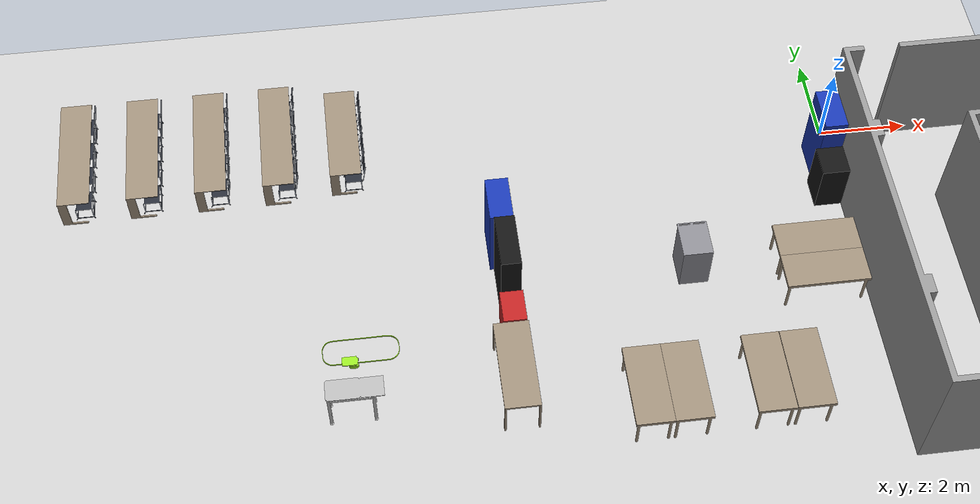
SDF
<sdf version="1.4">
 <world name="default">
  <physics name="5ms" type="ignored">
   <max_step_size>0.005</max_step_size>
   <real_time_factor>1.0</real_time_factor>
  </physics>
  <plugin filename="gz-sim-physics-system" name="gz::sim::systems::Physics"/>
  <plugin filename="gz-sim-user-commands-system" name="gz::sim::systems::UserCommands"/>
  <plugin filename="gz-sim-scene-broadcaster-system" name="gz::sim::systems::SceneBroadcaster"/>
  <plugin filename="gz-sim-sensors-system" name="gz::sim::systems::Sensors">
   <render_engine>ogre2</render_engine>
  </plugin>
  <plugin filename="gz-sim-imu-system" name="gz::sim::systems::Imu"/>
  <gravity>0.0 0.0 -9.8</gravity>
  <scene>
   <ambient>0.4 0.4 0.4 1</ambient>
   <background>0.7 0.7 0.7 1</background>
   <shadows>false</shadows>
   <grid>false</grid>
   <origin_visual>false</origin_visual>
  </scene>
  <include><uri>model://sun</uri></include>
  <include><uri>model://ground_plane</uri></include>
  <model name="mfja_3rd_floor_walls">
   <include><uri>model://mfja_3rd_floor</uri></include>
   <pose>0 0 0 0 0 -1.57</pose>
  </model>
  <include>
   <uri>model://kuka_table</uri>
   <name>kuka_table_1</name>
   <pose>-11.173 -6.0 0.5 -1.57 0 1.57</pose>
  </include>
  <include>
   <uri>model://shuttle_2_left</uri>
   <name>shuttle_2_left_1</name>
   <pose>-10.7 -5.25 1.18 0 0 -1.57</pose>
  </include>
  <include><uri>model://lab_table</uri><name>lab_table_1</name><pose>-17.0 0.87 0.0 0 0 -1.57</pose></include>
  <include><uri>model://lab_table</uri><name>lab_table_2</name><pose>-15.5 0.87 0.0 0 0 -1.57</pose></include>
  <include><uri>model://lab_table</uri><name>lab_table_3</name><pose>-14.0 0.87 0.0 0 0 -1.57</pose></include>
  <include><uri>model://lab_table</uri><name>lab_table_4</name><pose>-12.5 0.87 0.0 0 0 -1.57</pose></include>
  <include>
   <uri>model://lab_table_240cm</uri>
   <name>lab_table_5</name>
   <pose>-11.0 0.57 0.0 0 0 -1.57</pose>
  </include>
  <include><uri>model://lab_chair</uri><name>lab_chair_1</name><pose>-10.8 -0.15 0.0 0 0 0</pose></include>
  <include><uri>model://lab_chair</uri><name>lab_chair_2</name><pose>-10.8 0.4 0.0 0 0 0</pose></include>
  <include><uri>model://lab_chair</uri><name>lab_chair_3</name><pose>-10.8 1.0 0.0 0 0 0</pose></include>
  <include><uri>model://lab_chair</uri><name>lab_chair_4</name><pose>-10.8 1.6 0.0 0 0 0</pose></include>
  <include><uri>model://lab_chair</uri><name>lab_chair_5</name><pose>-12.3 -0.2 0.0 0 0 0</pose></include>
  <include><uri>model://lab_chair</uri><name>lab_chair_6</name><pose>-12.3 0.5 0.0 0 0 0</pose></include>
  <include><uri>model://lab_chair</uri><name>lab_chair_7</name><pose>-12.3 1.2 0.0 0 0 0</pose></include>
  <include><uri>model://lab_chair</uri><name>lab_chair_8</name><pose>-12.3 1.9 0.0 0 0 0</pose></include>
  <include><uri>model://lab_chair</uri><name>lab_chair_9</name><pose>-13.8 -0.2 0.0 0 0 0</pose></include>
  <include><uri>model://lab_chair</uri><name>lab_chair_10</name><pose>-13.8 0.5 0.0 0 0 0</pose></include>
  <include><uri>model://lab_chair</uri><name>lab_chair_11</name><pose>-13.8 1.2 0.0 0 0 0</pose></include>
  <include><uri>model://lab_chair</uri><name>lab_chair_12</name><pose>-13.8 1.9 0.0 0 0 0</pose></include>
  <include><uri>model://lab_chair</uri><name>lab_chair_13</name><pose>-15.3 -0.2 0.0 0 0 0</pose></include>
  <include><uri>model://lab_chair</uri><name>lab_chair_14</name><pose>-15.3 0.5 0.0 0 0 0</pose></include>
  <include><uri>model://lab_chair</uri><name>lab_chair_15</name><pose>-15.3 1.2 0.0 0 0 0</pose></include>
  <include><uri>model://lab_chair</uri><name>lab_chair_16</name><pose>-15.3 1.9 0.0 0 0 0</pose></include>
  <include><uri>model://lab_chair</uri><name>lab_chair_17</name><pose>-16.8 -0.2 0.0 0 0 0</pose></include>
  <include><uri>model://lab_chair</uri><name>lab_chair_18</name><pose>-16.8 0.5 0.0 0 0 0</pose></include>
  <include><uri>model://lab_chair</uri><name>lab_chair_19</name><pose>-16.8 1.2 0.0 0 0 0</pose></include>
  <include><uri>model://lab_chair</uri><name>lab_chair_20</name><pose>-16.8 1.9 0.0 0 0 0</pose></include>
  <include>
   <uri>model://room314_closet1</uri>
   <name>room314_closet1_1</name>
   <pose>-0.250000 -0.807000 0.0 0 0 0</pose>
  </include>
  <include>
   <uri>model://room314_charging_ergotron</uri>
   <name>room314_charging_ergotron_1</name>
   <pose>-3.7 -3.3 0.0 0 0 1.57</pose>
  </include>
  <include>
   <uri>model://room314_table_180cm</uri>
   <name>room314_table_180cm_1</name>
   <pose>-2.0 -6.5 0.0 0 0 -1.57</pose>
  </include>
  <include>
   <uri>model://room314_table_180cm</uri>
   <name>room314_table_180cm_2</name>
   <pose>-2.81 -6.5 0.0 0 0 -1.57</pose>
  </include>
  <include>
   <uri>model://room314_table_180cm</uri>
   <name>room314_table_180cm_3</name>
   <pose>-4.5 -6.5 0.0 0 0 -1.57</pose>
  </include>
  <include>
   <uri>model://room314_table_180cm</uri>
   <name>room314_table_180cm_4</name>
   <pose>-5.3 -6.5 0.0 0 0 -1.57</pose>
  </include>
  <include>
   <uri>model://room314_table_180cm</uri>
   <name>room314_table_180cm_5</name>
   <pose>-1.0 -3.4 0.0 0 0 0.0</pose>
  </include>
  <include>
   <uri>model://room314_table_180cm</uri>
   <name>room314_table_180cm_6</name>
   <pose>-1.0 -4.2 0.0 0 0 0.0</pose>
  </include>
  <include>
   <uri>model://room314_tiagobox</uri>
   <name>room314_tiagobox_1</name>
   <pose>-0.3 -1.66 0.0 0 0 -1.57</pose>
  </include>
  <include>
   <uri>model://room115_closet115</uri>
   <name>room115_closet115_1</name>
   <pose>-7.75 -3.45 0.0 0 0 -1.57</pose>
  </include>
  <include>
   <uri>model://room314_closet1</uri>
   <name>room115_closet1_1</name>
   <pose>-7.8 -2.34 0.0 0 0 0.0</pose>
  </include>
  <include>
   <uri>model://room115_table2000</uri>
   <name>room115_table2000_1</name>
   <pose>-7.85 -5.8 0.0 0 0 -1.57</pose>
  </include>
  <include>
   <uri>model://room115_tool_set</uri>
   <name>room115_tool_set_1</name>
   <pose>-7.75 -4.43 0.0 0 0 -1.57</pose>
  </include>
 </world>
</sdf>

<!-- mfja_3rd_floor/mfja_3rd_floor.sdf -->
<sdf version="1.4">
  <model name="mfja_3rd_floor">
    <static>1</static>
    <link name="link">

      <collision name="colision1">
        <pose>0 0 0 0 0 0</pose>
        <geometry>
          <mesh>
            <uri>model://mfja_3rd_floor/meshes/mfja_3rd_floor_v3.stl</uri>
	    <scale> 1 1 1 </scale>
          </mesh>
        </geometry>
        <surface>
          <bounce />
          <friction>
            <ode />
          </friction>
          <contact>
            <ode />
          </contact>
        </surface>
      </collision>

      <visual name="visual1">
        <pose>0 0 0 0 0 0</pose>
        <geometry>
          <mesh>
            <uri>model://mfja_3rd_floor/meshes/mfja_3rd_floor_v3.stl</uri>
	    <scale> 1 1 1 </scale>
          </mesh>
        </geometry>
        <material>
          <script>
            <uri>file://media/materials/scripts/gazebo.material</uri>
            <name>Gazebo/Grey</name>
          </script>
        </material>
      </visual>

      <velocity_decay>
        <linear>0.000000</linear>
        <angular>0.000000</angular>
      </velocity_decay>
      <self_collide>0</self_collide>
      <kinematic>0</kinematic>
      <gravity>1</gravity>
    </link>
  </model>
</sdf>

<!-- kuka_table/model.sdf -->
<sdf version="1.9">
  <model name="kuka_table">
    <static>true</static>
    <link name="kuka_table_link">
      <visual name="kuka_table_visual">
        <geometry>
          <mesh>
            <uri>model://kuka_table/meshes/kuka_table.stl</uri>
          </mesh>
        </geometry>
      </visual>
      <collision name="kuka_table_collision">
        <geometry>
          <mesh>
            <uri>model://kuka_table/meshes/kuka_table.stl</uri>
          </mesh>
        </geometry>
      </collision>
    </link>
  </model>
</sdf>

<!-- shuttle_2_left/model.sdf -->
<sdf version="1.9">
  <model name="shuttle_2_left">
    <static>true</static>
    <link name="shuttle_2_left_link">
      <visual name="shuttle_2_left_visual">
        <geometry>
          <mesh>
            <uri>model://shuttle_2_left/meshes/shuttle_2_left.stl</uri>
          </mesh>
        </geometry>
        <material>
          <ambient>0.60 0.90 0.15 1</ambient>
          <diffuse>0.60 0.90 0.15 1</diffuse>
          <specular>0.20 0.20 0.20 1</specular>
          <emissive>0 0 0 1</emissive>
        </material>
      </visual>
      <collision name="shuttle_2_left_collision">
        <geometry>
          <mesh>
            <uri>model://shuttle_2_left/meshes/shuttle_2_left.stl</uri>
          </mesh>
        </geometry>
      </collision>
    </link>
  </model>
</sdf>

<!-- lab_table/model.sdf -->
<sdf version="1.9">
  <model name="lab_table">
    <static>true</static>
    <link name="lab_table_link">
      <visual name="lab_table_visual">
        <pose>-1.4 -0.35 0.72 0 0 0</pose>
        <geometry>
          <mesh>
            <uri>model://lab_table/meshes/table.stl</uri>
          </mesh>
        </geometry>
        <material>
          <ambient>0.62 0.56 0.48 1.0</ambient>
          <diffuse>0.62 0.56 0.48 1.0</diffuse>
          <specular>0.12 0.12 0.12 1.0</specular>
          <emissive>0.0 0.0 0.0 0.0</emissive>
        </material>
      </visual>
      <collision name="lab_table_collision">
        <pose>-1.4 -0.35 0.72 0 0 0</pose>
        <geometry>
          <mesh>
            <uri>model://lab_table/meshes/table.stl</uri>
          </mesh>
        </geometry>
      </collision>
    </link>
  </model>
</sdf>

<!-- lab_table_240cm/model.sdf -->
<sdf version="1.9">
  <model name="lab_table_240cm">
    <static>true</static>
    <link name="lab_table_240cm_link">
      <visual name="lab_table_240cm_visual">
        <pose>-1.4 -0.35 0.72 0 0 0</pose>
        <geometry>
          <mesh>
            <uri>model://lab_table_240cm/meshes/table_240cm.stl</uri>
          </mesh>
        </geometry>
        <material>
          <ambient>0.62 0.56 0.48 1.0</ambient>
          <diffuse>0.62 0.56 0.48 1.0</diffuse>
          <specular>0.12 0.12 0.12 1.0</specular>
          <emissive>0.0 0.0 0.0 0.0</emissive>
        </material>
      </visual>
      <collision name="lab_table_240cm_collision">
        <pose>-1.4 -0.35 0.72 0 0 0</pose>
        <geometry>
          <mesh>
            <uri>model://lab_table_240cm/meshes/table_240cm.stl</uri>
          </mesh>
        </geometry>
      </collision>
    </link>
  </model>
</sdf>

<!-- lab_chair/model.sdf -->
<sdf version="1.9">
  <model name="lab_chair">
    <static>true</static>
    <link name="lab_chair_link">
      <visual name="lab_chair_visual">
        <pose>-0.26923 0.23 -0.00002 1.5708 0 0</pose>
        <geometry>
          <mesh>
            <uri>model://lab_chair/meshes/CHAIR.STL</uri>
            <scale>0.002 0.002 0.002</scale>
          </mesh>
        </geometry>
        <material>
          <ambient>0.16 0.18 0.22 1.0</ambient>
          <diffuse>0.16 0.18 0.22 1.0</diffuse>
          <specular>0.08 0.08 0.08 1.0</specular>
          <emissive>0.0 0.0 0.0 0.0</emissive>
        </material>
      </visual>
      <collision name="lab_chair_collision">
        <pose>-0.26923 0.23 -0.00002 1.5708 0 0</pose>
        <geometry>
          <mesh>
            <uri>model://lab_chair/meshes/CHAIR.STL</uri>
            <scale>0.002 0.002 0.002</scale>
          </mesh>
        </geometry>
      </collision>
    </link>
  </model>
</sdf>

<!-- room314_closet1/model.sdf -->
<sdf version="1.9">
  <model name="room314_closet1">
    <static>true</static>
    <link name="room314_closet1_link">
      <visual name="room314_closet1_visual">
        <pose>-0.25 -0.5 0 0 0 0</pose>
        <geometry>
          <mesh>
            <uri>model://room314_closet1/meshes/CLOSET1.stl</uri>
          </mesh>
        </geometry>
        <material>
          <ambient>0.10 0.22 0.70 1.0</ambient>
          <diffuse>0.10 0.22 0.70 1.0</diffuse>
          <specular>0.18 0.18 0.18 1.0</specular>
          <emissive>0.0 0.0 0.0 0.0</emissive>
        </material>
      </visual>
      <collision name="room314_closet1_collision">
        <pose>-0.25 -0.5 0 0 0 0</pose>
        <geometry>
          <mesh>
            <uri>model://room314_closet1/meshes/CLOSET1.stl</uri>
          </mesh>
        </geometry>
      </collision>
    </link>
  </model>
</sdf>

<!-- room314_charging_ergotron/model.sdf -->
<sdf version="1.9">
  <model name="room314_charging_ergotron">
    <static>true</static>
    <link name="room314_charging_ergotron_link">
      <visual name="room314_charging_ergotron_visual">
        <pose>-0.4125 -0.32 0 0 0 0</pose>
        <geometry>
          <mesh>
            <uri>model://room314_charging_ergotron/meshes/charging_ergotron.stl</uri>
          </mesh>
        </geometry>
        <material>
          <ambient>0.55 0.55 0.58 1.0</ambient>
          <diffuse>0.55 0.55 0.58 1.0</diffuse>
          <specular>0.20 0.20 0.20 1.0</specular>
          <emissive>0.0 0.0 0.0 0.0</emissive>
        </material>
      </visual>
      <collision name="room314_charging_ergotron_collision">
        <pose>-0.4125 -0.32 0 0 0 0</pose>
        <geometry>
          <mesh>
            <uri>model://room314_charging_ergotron/meshes/charging_ergotron.stl</uri>
          </mesh>
        </geometry>
      </collision>
    </link>
  </model>
</sdf>

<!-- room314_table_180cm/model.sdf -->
<sdf version="1.9">
  <model name="room314_table_180cm">
    <static>true</static>
    <link name="room314_table_180cm_link">
      <visual name="room314_table_180cm_visual">
        <pose>-0.9 -0.35 0.72 0 0 0</pose>
        <geometry>
          <mesh>
            <uri>model://room314_table_180cm/meshes/table_180cm.stl</uri>
          </mesh>
        </geometry>
        <material>
          <ambient>0.62 0.56 0.48 1.0</ambient>
          <diffuse>0.62 0.56 0.48 1.0</diffuse>
          <specular>0.12 0.12 0.12 1.0</specular>
          <emissive>0.0 0.0 0.0 0.0</emissive>
        </material>
      </visual>
      <collision name="room314_table_180cm_collision">
        <pose>-0.9 -0.35 0.72 0 0 0</pose>
        <geometry>
          <mesh>
            <uri>model://room314_table_180cm/meshes/table_180cm.stl</uri>
          </mesh>
        </geometry>
      </collision>
    </link>
  </model>
</sdf>

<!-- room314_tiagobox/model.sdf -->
<sdf version="1.9">
  <model name="room314_tiagobox">
    <static>true</static>
    <link name="room314_tiagobox_link">
      <visual name="room314_tiagobox_visual">
        <pose>-0.345 -0.305 0 0 0 0</pose>
        <geometry>
          <mesh>
            <uri>model://room314_tiagobox/meshes/tiagobox.stl</uri>
          </mesh>
        </geometry>
        <material>
          <ambient>0.08 0.08 0.08 1.0</ambient>
          <diffuse>0.08 0.08 0.08 1.0</diffuse>
          <specular>0.06 0.06 0.06 1.0</specular>
          <emissive>0.0 0.0 0.0 0.0</emissive>
        </material>
      </visual>
      <collision name="room314_tiagobox_collision">
        <pose>-0.345 -0.305 0 0 0 0</pose>
        <geometry>
          <mesh>
            <uri>model://room314_tiagobox/meshes/tiagobox.stl</uri>
          </mesh>
        </geometry>
      </collision>
    </link>
  </model>
</sdf>

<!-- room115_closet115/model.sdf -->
<sdf version="1.9">
  <model name="room115_closet115">
    <static>true</static>
    <link name="room115_closet115_link">
      <visual name="room115_closet115_visual">
        <pose>-0.6 -0.215 0 0 0 0</pose>
        <geometry>
          <mesh>
            <uri>model://room115_closet115/meshes/closet115.stl</uri>
          </mesh>
        </geometry>
        <material>
          <ambient>0.08 0.08 0.08 1.0</ambient>
          <diffuse>0.08 0.08 0.08 1.0</diffuse>
          <specular>0.06 0.06 0.06 1.0</specular>
          <emissive>0.0 0.0 0.0 0.0</emissive>
        </material>
      </visual>
      <collision name="room115_closet115_collision">
        <pose>-0.6 -0.215 0 0 0 0</pose>
        <geometry>
          <mesh>
            <uri>model://room115_closet115/meshes/closet115.stl</uri>
          </mesh>
        </geometry>
      </collision>
    </link>
  </model>
</sdf>

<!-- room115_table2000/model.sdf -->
<sdf version="1.9">
  <model name="room115_table2000">
    <static>true</static>
    <link name="room115_table2000_link">
      <visual name="room115_table2000_visual">
        <pose>-1.0 -0.375 0.9 0 0 0</pose>
        <geometry>
          <mesh>
            <uri>model://room115_table2000/meshes/table2000.stl</uri>
          </mesh>
        </geometry>
        <material>
          <ambient>0.62 0.56 0.48 1.0</ambient>
          <diffuse>0.62 0.56 0.48 1.0</diffuse>
          <specular>0.12 0.12 0.12 1.0</specular>
          <emissive>0.0 0.0 0.0 0.0</emissive>
        </material>
      </visual>
      <collision name="room115_table2000_collision">
        <pose>-1.0 -0.375 0.9 0 0 0</pose>
        <geometry>
          <mesh>
            <uri>model://room115_table2000/meshes/table2000.stl</uri>
          </mesh>
        </geometry>
      </collision>
    </link>
  </model>
</sdf>

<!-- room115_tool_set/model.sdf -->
<sdf version="1.9">
  <model name="room115_tool_set">
    <static>true</static>
    <link name="room115_tool_set_link">
      <visual name="room115_tool_set_visual">
        <pose>-0.36 -0.25 0 0 0 0</pose>
        <geometry>
          <mesh>
            <uri>model://room115_tool_set/meshes/tool_set.stl</uri>
          </mesh>
        </geometry>
        <material>
          <ambient>0.75 0.14 0.14 1.0</ambient>
          <diffuse>0.75 0.14 0.14 1.0</diffuse>
          <specular>0.16 0.16 0.16 1.0</specular>
          <emissive>0.0 0.0 0.0 0.0</emissive>
        </material>
      </visual>
      <collision name="room115_tool_set_collision">
        <pose>-0.36 -0.25 0 0 0 0</pose>
        <geometry>
          <mesh>
            <uri>model://room115_tool_set/meshes/tool_set.stl</uri>
          </mesh>
        </geometry>
      </collision>
    </link>
  </model>
</sdf>
